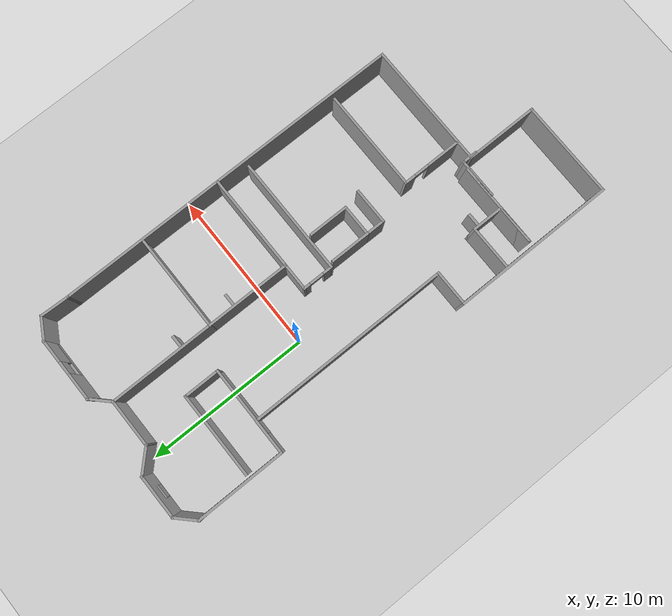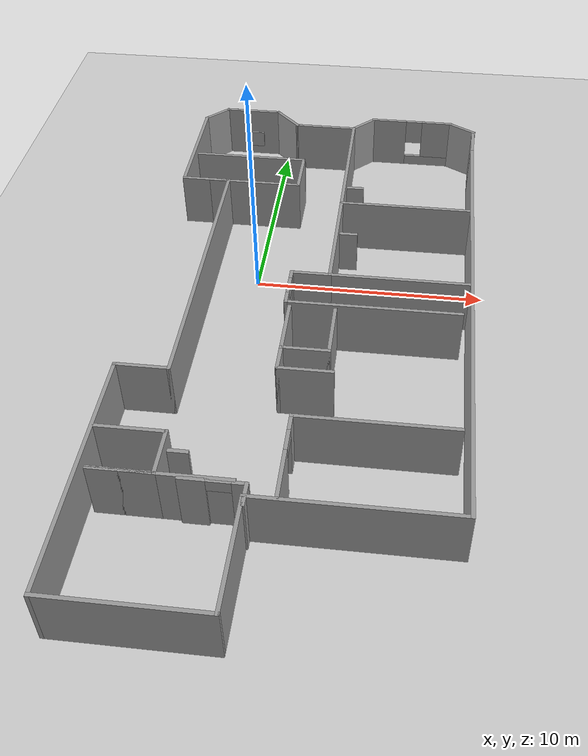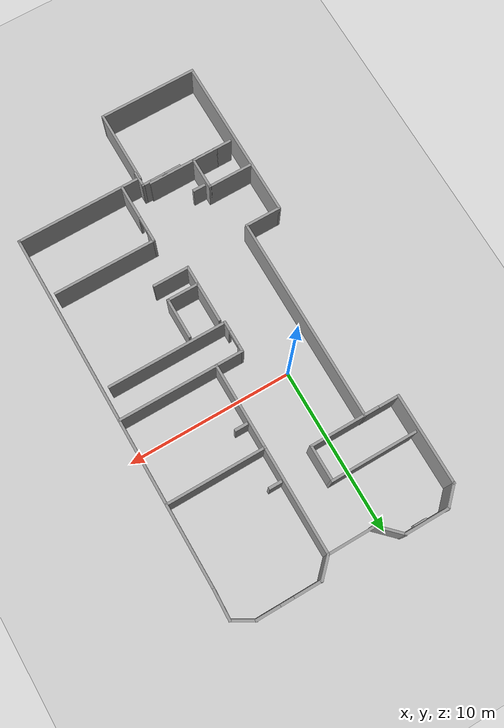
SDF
<sdf version="1.6">
 <world name="default">
  <model name="ground_plane">
   <static>1</static>
   <link name="link">
    <collision name="collision">
     <geometry><plane><normal>0 0 1</normal><size>100 100</size></plane></geometry>
     <surface><friction><ode><mu>100</mu><mu2>50</mu2></ode></friction></surface>
    </collision>
    <visual name="visual">
     <cast_shadows>0</cast_shadows>
     <geometry><plane><normal>0 0 1</normal><size>100 100</size></plane></geometry>
     <material>
      <script><uri>file://media/materials/scripts/gazebo.material</uri><name>Gazebo/Grey</name></script>
     </material>
    </visual>
   </link>
  </model>
  <model name="Building">
   <pose>2.66116 -3.56001 0 0 -0 0</pose>
   <link name="Door_0">
    <collision name="Door_0_Collision">
     <geometry><box><size>0.9 0.17 2</size></box></geometry>
     <pose>0 0 1 0 -0 0</pose>
    </collision>
    <visual name="Door_0_Visual">
     <pose>0 0 1 0 -0 0</pose>
     <geometry><box><size>0.9 0.17 2</size></box></geometry>
     <material>
      <script><uri>file://media/materials/scripts/gazebo.material</uri><name>Gazebo/Grey</name></script>
     </material>
    </visual>
    <pose>1.20871 8.66902 0 0 -0 0</pose>
   </link>
   <link name="Door_1">
    <collision name="Door_1_Collision">
     <geometry><box><size>0.9 0.17 2</size></box></geometry>
     <pose>0 0 1 0 -0 0</pose>
    </collision>
    <visual name="Door_1_Visual">
     <pose>0 0 1 0 -0 0</pose>
     <geometry><box><size>0.9 0.17 2</size></box></geometry>
     <material>
      <script><uri>file://media/materials/scripts/gazebo.material</uri><name>Gazebo/Grey</name></script>
     </material>
    </visual>
    <pose>1.20871 5.1178 0 0 -0 0</pose>
   </link>
   <link name="Door_3">
    <collision name="Door_3_Collision">
     <geometry><box><size>0.9 0.17 2</size></box></geometry>
     <pose>0 0 1 0 -0 0</pose>
    </collision>
    <visual name="Door_3_Visual">
     <pose>0 0 1 0 -0 0</pose>
     <geometry><box><size>0.9 0.17 2</size></box></geometry>
     <material>
      <script><uri>file://media/materials/scripts/gazebo.material</uri><name>Gazebo/Grey</name></script>
     </material>
    </visual>
    <pose>-3.63385 -7.90333 0 0 -0 0</pose>
   </link>
   <link name="Wall_10">
    <collision name="Wall_10_Collision">
     <geometry><box><size>5.5 0.15 2.5</size></box></geometry>
     <pose>0 0 1.25 0 -0 0</pose>
    </collision>
    <visual name="Wall_10_Visual">
     <pose>0 0 1.25 0 -0 0</pose>
     <geometry><box><size>5.5 0.15 2.5</size></box></geometry>
     <material>
      <script><uri>file://media/materials/scripts/gazebo.material</uri><name>Gazebo/Grey</name></script>
      <ambient>1 1 1 1</ambient>
     </material>
     <meta><layer>0</layer></meta>
    </visual>
    <pose>-6.75304 10.6072 0 0 -0 1.5708</pose>
   </link>
   <link name="Wall_11">
    <collision name="Wall_11_Collision">
     <geometry><box><size>1.5 0.15 2.5</size></box></geometry>
     <pose>0 0 1.25 0 -0 0</pose>
    </collision>
    <visual name="Wall_11_Visual">
     <pose>0 0 1.25 0 -0 0</pose>
     <geometry><box><size>1.5 0.15 2.5</size></box></geometry>
     <material>
      <script><uri>file://media/materials/scripts/gazebo.material</uri><name>Gazebo/Grey</name></script>
      <ambient>1 1 1 1</ambient>
     </material>
     <meta><layer>0</layer></meta>
    </visual>
    <pose>-6.27574 13.7595 0 0 -0 0.785398</pose>
   </link>
   <link name="Wall_12">
    <collision name="Wall_12_Collision">
     <geometry><box><size>2.75 0.15 2.5</size></box></geometry>
     <pose>0 0 1.25 0 -0 0</pose>
    </collision>
    <visual name="Wall_12_Visual">
     <pose>0 0 1.25 0 -0 0</pose>
     <geometry><box><size>2.75 0.15 2.5</size></box></geometry>
     <material>
      <script><uri>file://media/materials/scripts/gazebo.material</uri><name>Gazebo/Grey</name></script>
      <ambient>1 1 1 1</ambient>
     </material>
     <meta><layer>0</layer></meta>
    </visual>
    <pose>-4.49845 14.2368 0 0 -0 0</pose>
   </link>
   <link name="Wall_13">
    <collision name="Wall_13_Collision">
     <geometry><box><size>1.75 0.15 2.5</size></box></geometry>
     <pose>0 0 1.25 0 -0 0</pose>
    </collision>
    <visual name="Wall_13_Visual">
     <pose>0 0 1.25 0 -0 0</pose>
     <geometry><box><size>1.75 0.15 2.5</size></box></geometry>
     <material>
      <script><uri>file://media/materials/scripts/gazebo.material</uri><name>Gazebo/Grey</name></script>
      <ambient>1 1 1 1</ambient>
     </material>
     <meta><layer>0</layer></meta>
    </visual>
    <pose>-2.63276 13.6711 0 0 0 -0.785398</pose>
   </link>
   <link name="Wall_14">
    <collision name="Wall_14_Collision">
     <geometry><box><size>3 0.15 2.5</size></box></geometry>
     <pose>0 0 1.25 0 -0 0</pose>
    </collision>
    <visual name="Wall_14_Visual">
     <pose>0 0 1.25 0 -0 0</pose>
     <geometry><box><size>3 0.15 2.5</size></box></geometry>
     <material>
      <script><uri>file://media/materials/scripts/gazebo.material</uri><name>Gazebo/Grey</name></script>
      <ambient>1 1 1 1</ambient>
     </material>
     <meta><layer>0</layer></meta>
    </visual>
    <pose>-0.642075 13.1054 0 0 -0 0</pose>
   </link>
   <link name="Wall_15">
    <collision name="Wall_15_Collision">
     <geometry><box><size>1.5 0.15 2.5</size></box></geometry>
     <pose>0 0 1.25 0 -0 0</pose>
    </collision>
    <visual name="Wall_15_Visual">
     <pose>0 0 1.25 0 -0 0</pose>
     <geometry><box><size>1.5 0.15 2.5</size></box></geometry>
     <material>
      <script><uri>file://media/materials/scripts/gazebo.material</uri><name>Gazebo/Grey</name></script>
      <ambient>1 1 1 1</ambient>
     </material>
     <meta><layer>0</layer></meta>
    </visual>
    <pose>1.26022 13.5827 0 0 -0 0.785398</pose>
   </link>
   <link name="Wall_16">
    <pose>3.66252 14.06 0 0 -0 0</pose>
    <visual name="Wall_16_Visual_0">
     <pose>-1.13555 0 1.25 0 -0 0</pose>
     <geometry><box><size>1.7289 0.15 2.5</size></box></geometry>
     <material>
      <script><uri>file://media/materials/scripts/gazebo.material</uri><name>Gazebo/Grey</name></script>
      <ambient>1 1 1 1</ambient>
     </material>
     <meta><layer>0</layer></meta>
    </visual>
    <collision name="Wall_16_Collision_0">
     <geometry><box><size>1.7289 0.15 2.5</size></box></geometry>
     <pose>-1.13555 0 1.25 0 -0 0</pose>
    </collision>
    <visual name="Wall_16_Visual_1">
     <pose>0.86445 0 0.25 0 -0 0</pose>
     <geometry><box><size>2.2711 0.15 0.5</size></box></geometry>
     <material>
      <script><uri>file://media/materials/scripts/gazebo.material</uri><name>Gazebo/Grey</name></script>
      <ambient>1 1 1 1</ambient>
     </material>
     <meta><layer>0</layer></meta>
    </visual>
    <collision name="Wall_16_Collision_1">
     <geometry><box><size>2.2711 0.15 0.5</size></box></geometry>
     <pose>0.86445 0 0.25 0 -0 0</pose>
    </collision>
    <visual name="Wall_16_Visual_2">
     <pose>1.26445 0 1.5 0 -0 0</pose>
     <geometry><box><size>1.4711 0.15 2</size></box></geometry>
     <material>
      <script><uri>file://media/materials/scripts/gazebo.material</uri><name>Gazebo/Grey</name></script>
      <ambient>1 1 1 1</ambient>
     </material>
     <meta><layer>0</layer></meta>
    </visual>
    <collision name="Wall_16_Collision_2">
     <geometry><box><size>1.4711 0.15 2</size></box></geometry>
     <pose>1.26445 0 1.5 0 -0 0</pose>
    </collision>
    <visual name="Wall_16_Visual_3">
     <pose>0.1289 0 1.9 0 -0 0</pose>
     <geometry><box><size>0.8 0.15 1.2</size></box></geometry>
     <material>
      <script><uri>file://media/materials/scripts/gazebo.material</uri><name>Gazebo/Grey</name></script>
      <ambient>1 1 1 1</ambient>
     </material>
     <meta><layer>0</layer></meta>
    </visual>
    <collision name="Wall_16_Collision_3">
     <geometry><box><size>0.8 0.15 1.2</size></box></geometry>
     <pose>0.1289 0 1.9 0 -0 0</pose>
    </collision>
   </link>
   <link name="Wall_17">
    <collision name="Wall_17_Collision">
     <geometry><box><size>1.5 0.15 2.5</size></box></geometry>
     <pose>0 0 1.25 0 -0 0</pose>
    </collision>
    <visual name="Wall_17_Visual">
     <pose>0 0 1.25 0 -0 0</pose>
     <geometry><box><size>1.5 0.15 2.5</size></box></geometry>
     <material>
      <script><uri>file://media/materials/scripts/gazebo.material</uri><name>Gazebo/Grey</name></script>
      <ambient>1 1 1 1</ambient>
     </material>
     <meta><layer>0</layer></meta>
    </visual>
    <pose>6.17209 13.7225 0 0 0 -0.523599</pose>
   </link>
   <link name="Wall_18">
    <collision name="Wall_18_Collision">
     <geometry><box><size>1.85386 0.15 2.5</size></box></geometry>
     <pose>0 0 1.25 0 -0 0</pose>
    </collision>
    <visual name="Wall_18_Visual">
     <pose>0 0 1.25 0 -0 0</pose>
     <geometry><box><size>1.85386 0.15 2.5</size></box></geometry>
     <material>
      <script><uri>file://media/materials/scripts/gazebo.material</uri><name>Gazebo/Grey</name></script>
      <ambient>1 1 1 1</ambient>
     </material>
     <meta><layer>0</layer></meta>
    </visual>
    <pose>6.72681 12.5336 0 0 0 -1.60584</pose>
   </link>
   <link name="Wall_2">
    <collision name="Wall_2_Collision">
     <geometry><box><size>21.75 0.15 2.5</size></box></geometry>
     <pose>0 0 1.25 0 -0 0</pose>
    </collision>
    <visual name="Wall_2_Visual">
     <pose>0 0 1.25 0 -0 0</pose>
     <geometry><box><size>21.75 0.15 2.5</size></box></geometry>
     <material>
      <script><uri>file://media/materials/scripts/gazebo.material</uri><name>Gazebo/Grey</name></script>
      <ambient>1 1 1 1</ambient>
     </material>
     <meta><layer>0</layer></meta>
    </visual>
    <pose>6.69696 0.88217 0 0 0 -1.5708</pose>
   </link>
   <link name="Wall_20">
    <collision name="Wall_20_Collision">
     <geometry><box><size>4.25 0.15 2.5</size></box></geometry>
     <pose>0 0 1.25 0 -0 0</pose>
    </collision>
    <visual name="Wall_20_Visual">
     <pose>0 0 1.25 0 -0 0</pose>
     <geometry><box><size>4.25 0.15 2.5</size></box></geometry>
     <material>
      <script><uri>file://media/materials/scripts/gazebo.material</uri><name>Gazebo/Grey</name></script>
      <ambient>1 1 1 1</ambient>
     </material>
     <meta><layer>0</layer></meta>
    </visual>
    <pose>-3.41327 7.91573 0 0 -0 0</pose>
   </link>
   <link name="Wall_21">
    <collision name="Wall_21_Collision">
     <geometry><box><size>2.25 0.15 2.5</size></box></geometry>
     <pose>0 0 1.25 0 -0 0</pose>
    </collision>
    <visual name="Wall_21_Visual">
     <pose>0 0 1.25 0 -0 0</pose>
     <geometry><box><size>2.25 0.15 2.5</size></box></geometry>
     <material>
      <script><uri>file://media/materials/scripts/gazebo.material</uri><name>Gazebo/Grey</name></script>
      <ambient>1 1 1 1</ambient>
     </material>
     <meta><layer>0</layer></meta>
    </visual>
    <pose>-1.36327 8.96573 0 0 -0 1.5708</pose>
   </link>
   <link name="Wall_22">
    <collision name="Wall_22_Collision">
     <geometry><box><size>5.25 0.15 2.5</size></box></geometry>
     <pose>0 0 1.25 0 -0 0</pose>
    </collision>
    <visual name="Wall_22_Visual">
     <pose>0 0 1.25 0 -0 0</pose>
     <geometry><box><size>5.25 0.15 2.5</size></box></geometry>
     <material>
      <script><uri>file://media/materials/scripts/gazebo.material</uri><name>Gazebo/Grey</name></script>
      <ambient>1 1 1 1</ambient>
     </material>
     <meta><layer>0</layer></meta>
    </visual>
    <pose>-3.91327 10.0157 0 0 -0 3.14159</pose>
   </link>
   <link name="Wall_24">
    <collision name="Wall_24_Collision">
     <geometry><box><size>6.5 0.15 2.5</size></box></geometry>
     <pose>0 0 1.25 0 -0 0</pose>
    </collision>
    <visual name="Wall_24_Visual">
     <pose>0 0 1.25 0 -0 0</pose>
     <geometry><box><size>6.5 0.15 2.5</size></box></geometry>
     <material>
      <script><uri>file://media/materials/scripts/gazebo.material</uri><name>Gazebo/Grey</name></script>
      <ambient>1 1 1 1</ambient>
     </material>
     <meta><layer>0</layer></meta>
    </visual>
    <pose>0.782925 9.93039 0 0 0 -1.5708</pose>
   </link>
   <link name="Wall_25">
    <collision name="Wall_25_Collision">
     <geometry><box><size>6 0.15 2.5</size></box></geometry>
     <pose>0 0 1.25 0 -0 0</pose>
    </collision>
    <visual name="Wall_25_Visual">
     <pose>0 0 1.25 0 -0 0</pose>
     <geometry><box><size>6 0.15 2.5</size></box></geometry>
     <material>
      <script><uri>file://media/materials/scripts/gazebo.material</uri><name>Gazebo/Grey</name></script>
      <ambient>1 1 1 1</ambient>
     </material>
     <meta><layer>0</layer></meta>
    </visual>
    <pose>3.70792 6.75539 0 0 -0 0</pose>
   </link>
   <link name="Wall_27">
    <collision name="Wall_27_Collision">
     <geometry><box><size>5.25 0.15 2.5</size></box></geometry>
     <pose>0 0 1.25 0 -0 0</pose>
    </collision>
    <visual name="Wall_27_Visual">
     <pose>0 0 1.25 0 -0 0</pose>
     <geometry><box><size>5.25 0.15 2.5</size></box></geometry>
     <material>
      <script><uri>file://media/materials/scripts/gazebo.material</uri><name>Gazebo/Grey</name></script>
      <ambient>1 1 1 1</ambient>
     </material>
     <meta><layer>0</layer></meta>
    </visual>
    <pose>0.782925 4.20539 0 0 0 -1.5708</pose>
   </link>
   <link name="Wall_28">
    <collision name="Wall_28_Collision">
     <geometry><box><size>6 0.15 2.5</size></box></geometry>
     <pose>0 0 1.25 0 -0 0</pose>
    </collision>
    <visual name="Wall_28_Visual">
     <pose>0 0 1.25 0 -0 0</pose>
     <geometry><box><size>6 0.15 2.5</size></box></geometry>
     <material>
      <script><uri>file://media/materials/scripts/gazebo.material</uri><name>Gazebo/Grey</name></script>
      <ambient>1 1 1 1</ambient>
     </material>
     <meta><layer>0</layer></meta>
    </visual>
    <pose>3.70792 1.65539 0 0 -0 0</pose>
   </link>
   <link name="Wall_3">
    <collision name="Wall_3_Collision">
     <geometry><box><size>7.75 0.15 2.5</size></box></geometry>
     <pose>0 0 1.25 0 -0 0</pose>
    </collision>
    <visual name="Wall_3_Visual">
     <pose>0 0 1.25 0 -0 0</pose>
     <geometry><box><size>7.75 0.15 2.5</size></box></geometry>
     <material>
      <script><uri>file://media/materials/scripts/gazebo.material</uri><name>Gazebo/Grey</name></script>
      <ambient>1 1 1 1</ambient>
     </material>
     <meta><layer>0</layer></meta>
    </visual>
    <pose>2.89696 -9.91783 0 0 -0 3.14159</pose>
   </link>
   <link name="Wall_30">
    <collision name="Wall_30_Collision">
     <geometry><box><size>1.75 0.15 2.5</size></box></geometry>
     <pose>0 0 1.25 0 -0 0</pose>
    </collision>
    <visual name="Wall_30_Visual">
     <pose>0 0 1.25 0 -0 0</pose>
     <geometry><box><size>1.75 0.15 2.5</size></box></geometry>
     <material>
      <script><uri>file://media/materials/scripts/gazebo.material</uri><name>Gazebo/Grey</name></script>
      <ambient>1 1 1 1</ambient>
     </material>
     <meta><layer>0</layer></meta>
    </visual>
    <pose>-0.017075 1.65539 0 0 -0 3.14159</pose>
   </link>
   <link name="Wall_31">
    <pose>-0.817075 0.730394 0 0 0 -1.5708</pose>
    <visual name="Wall_31_Visual_0">
     <pose>-0.76645 0 1.25 0 -0 0</pose>
     <geometry><box><size>0.4671 0.15 2.5</size></box></geometry>
     <material>
      <script><uri>file://media/materials/scripts/gazebo.material</uri><name>Gazebo/Grey</name></script>
      <ambient>1 1 1 1</ambient>
     </material>
     <meta><layer>0</layer></meta>
    </visual>
    <collision name="Wall_31_Collision_0">
     <geometry><box><size>0.4671 0.15 2.5</size></box></geometry>
     <pose>-0.76645 0 1.25 0 -0 0</pose>
    </collision>
    <visual name="Wall_31_Visual_1">
     <pose>0.68355 0 1.25 0 -0 0</pose>
     <geometry><box><size>0.6329 0.15 2.5</size></box></geometry>
     <material>
      <script><uri>file://media/materials/scripts/gazebo.material</uri><name>Gazebo/Grey</name></script>
      <ambient>1 1 1 1</ambient>
     </material>
     <meta><layer>0</layer></meta>
    </visual>
    <collision name="Wall_31_Collision_1">
     <geometry><box><size>0.6329 0.15 2.5</size></box></geometry>
     <pose>0.68355 0 1.25 0 -0 0</pose>
    </collision>
    <visual name="Wall_31_Visual_2">
     <pose>-0.0829 0 2.25 0 -0 0</pose>
     <geometry><box><size>0.9 0.15 0.5</size></box></geometry>
     <material>
      <script><uri>file://media/materials/scripts/gazebo.material</uri><name>Gazebo/Grey</name></script>
      <ambient>1 1 1 1</ambient>
     </material>
     <meta><layer>0</layer></meta>
    </visual>
    <collision name="Wall_31_Collision_2">
     <geometry><box><size>0.9 0.15 0.5</size></box></geometry>
     <pose>-0.0829 0 2.25 0 -0 0</pose>
    </collision>
   </link>
   <link name="Wall_32">
    <collision name="Wall_32_Collision">
     <geometry><box><size>7.25 0.15 2.5</size></box></geometry>
     <pose>0 0 1.25 0 -0 0</pose>
    </collision>
    <visual name="Wall_32_Visual">
     <pose>0 0 1.25 0 -0 0</pose>
     <geometry><box><size>7.25 0.15 2.5</size></box></geometry>
     <material>
      <script><uri>file://media/materials/scripts/gazebo.material</uri><name>Gazebo/Grey</name></script>
      <ambient>1 1 1 1</ambient>
     </material>
     <meta><layer>0</layer></meta>
    </visual>
    <pose>2.73292 -0.194606 0 0 -0 0</pose>
   </link>
   <link name="Wall_34">
    <collision name="Wall_34_Collision">
     <geometry><box><size>2.5 0.15 2.5</size></box></geometry>
     <pose>0 0 1.25 0 -0 0</pose>
    </collision>
    <visual name="Wall_34_Visual">
     <pose>0 0 1.25 0 -0 0</pose>
     <geometry><box><size>2.5 0.15 2.5</size></box></geometry>
     <material>
      <script><uri>file://media/materials/scripts/gazebo.material</uri><name>Gazebo/Grey</name></script>
      <ambient>1 1 1 1</ambient>
     </material>
     <meta><layer>0</layer></meta>
    </visual>
    <pose>-0.620699 -1.65306 0 0 0 -1.5708</pose>
   </link>
   <link name="Wall_35">
    <collision name="Wall_35_Collision">
     <geometry><box><size>2 0.15 2.5</size></box></geometry>
     <pose>0 0 1.25 0 -0 0</pose>
    </collision>
    <visual name="Wall_35_Visual">
     <pose>0 0 1.25 0 -0 0</pose>
     <geometry><box><size>2 0.15 2.5</size></box></geometry>
     <material>
      <script><uri>file://media/materials/scripts/gazebo.material</uri><name>Gazebo/Grey</name></script>
      <ambient>1 1 1 1</ambient>
     </material>
     <meta><layer>0</layer></meta>
    </visual>
    <pose>0.304301 -2.82806 0 0 -0 0</pose>
   </link>
   <link name="Wall_36">
    <collision name="Wall_36_Collision">
     <geometry><box><size>2.5 0.15 2.5</size></box></geometry>
     <pose>0 0 1.25 0 -0 0</pose>
    </collision>
    <visual name="Wall_36_Visual">
     <pose>0 0 1.25 0 -0 0</pose>
     <geometry><box><size>2.5 0.15 2.5</size></box></geometry>
     <material>
      <script><uri>file://media/materials/scripts/gazebo.material</uri><name>Gazebo/Grey</name></script>
      <ambient>1 1 1 1</ambient>
     </material>
     <meta><layer>0</layer></meta>
    </visual>
    <pose>1.2293 -1.65306 0 0 -0 1.5708</pose>
   </link>
   <link name="Wall_38">
    <collision name="Wall_38_Collision">
     <geometry><box><size>1.25 0.15 2.5</size></box></geometry>
     <pose>0 0 1.25 0 -0 0</pose>
    </collision>
    <visual name="Wall_38_Visual">
     <pose>0 0 1.25 0 -0 0</pose>
     <geometry><box><size>1.25 0.15 2.5</size></box></geometry>
     <material>
      <script><uri>file://media/materials/scripts/gazebo.material</uri><name>Gazebo/Grey</name></script>
      <ambient>1 1 1 1</ambient>
     </material>
     <meta><layer>0</layer></meta>
    </visual>
    <pose>-0.620699 -3.37806 0 0 0 -1.5708</pose>
   </link>
   <link name="Wall_39">
    <collision name="Wall_39_Collision">
     <geometry><box><size>2.25 0.15 2.5</size></box></geometry>
     <pose>0 0 1.25 0 -0 0</pose>
    </collision>
    <visual name="Wall_39_Visual">
     <pose>0 0 1.25 0 -0 0</pose>
     <geometry><box><size>2.25 0.15 2.5</size></box></geometry>
     <material>
      <script><uri>file://media/materials/scripts/gazebo.material</uri><name>Gazebo/Grey</name></script>
      <ambient>1 1 1 1</ambient>
     </material>
     <meta><layer>0</layer></meta>
    </visual>
    <pose>0.429301 -3.92806 0 0 -0 0</pose>
   </link>
   <link name="Wall_4">
    <collision name="Wall_4_Collision">
     <geometry><box><size>4.5 0.15 2.5</size></box></geometry>
     <pose>0 0 1.25 0 -0 0</pose>
    </collision>
    <visual name="Wall_4_Visual">
     <pose>0 0 1.25 0 -0 0</pose>
     <geometry><box><size>4.5 0.15 2.5</size></box></geometry>
     <material>
      <script><uri>file://media/materials/scripts/gazebo.material</uri><name>Gazebo/Grey</name></script>
      <ambient>1 1 1 1</ambient>
     </material>
     <meta><layer>0</layer></meta>
    </visual>
    <pose>-0.90304 -12.0928 0 0 0 -1.5708</pose>
   </link>
   <link name="Wall_42">
    <pose>0.240202 -8.04036 0 0 -0 1.5708</pose>
    <visual name="Wall_42_Visual_0">
     <pose>-0.824955 0 1.25 0 -0 0</pose>
     <geometry><box><size>2.10009 0.15 2.5</size></box></geometry>
     <material>
      <script><uri>file://media/materials/scripts/gazebo.material</uri><name>Gazebo/Grey</name></script>
      <ambient>1 1 1 1</ambient>
     </material>
     <meta><layer>0</layer></meta>
    </visual>
    <collision name="Wall_42_Collision_0">
     <geometry><box><size>2.10009 0.15 2.5</size></box></geometry>
     <pose>-0.824955 0 1.25 0 -0 0</pose>
    </collision>
    <visual name="Wall_42_Visual_1">
     <pose>1.50005 0 1.25 0 -0 0</pose>
     <geometry><box><size>0.749909 0.15 2.5</size></box></geometry>
     <material>
      <script><uri>file://media/materials/scripts/gazebo.material</uri><name>Gazebo/Grey</name></script>
      <ambient>1 1 1 1</ambient>
     </material>
     <meta><layer>0</layer></meta>
    </visual>
    <collision name="Wall_42_Collision_1">
     <geometry><box><size>0.749909 0.15 2.5</size></box></geometry>
     <pose>1.50005 0 1.25 0 -0 0</pose>
    </collision>
    <visual name="Wall_42_Visual_2">
     <pose>0.675091 0 2.25 0 -0 0</pose>
     <geometry><box><size>0.9 0.15 0.5</size></box></geometry>
     <material>
      <script><uri>file://media/materials/scripts/gazebo.material</uri><name>Gazebo/Grey</name></script>
      <ambient>1 1 1 1</ambient>
     </material>
     <meta><layer>0</layer></meta>
    </visual>
    <collision name="Wall_42_Collision_2">
     <geometry><box><size>0.9 0.15 0.5</size></box></geometry>
     <pose>0.675091 0 2.25 0 -0 0</pose>
    </collision>
   </link>
   <link name="Wall_43">
    <collision name="Wall_43_Collision">
     <geometry><box><size>6.25 0.15 2.5</size></box></geometry>
     <pose>0 0 1.25 0 -0 0</pose>
    </collision>
    <visual name="Wall_43_Visual">
     <pose>0 0 1.25 0 -0 0</pose>
     <geometry><box><size>6.25 0.15 2.5</size></box></geometry>
     <material>
      <script><uri>file://media/materials/scripts/gazebo.material</uri><name>Gazebo/Grey</name></script>
      <ambient>1 1 1 1</ambient>
     </material>
     <meta><layer>0</layer></meta>
    </visual>
    <pose>3.2902 -6.24036 0 0 -0 0</pose>
   </link>
   <link name="Wall_45">
    <collision name="Wall_45_Collision">
     <geometry><box><size>2.75 0.15 2.5</size></box></geometry>
     <pose>0 0 1.25 0 -0 0</pose>
    </collision>
    <visual name="Wall_45_Visual">
     <pose>0 0 1.25 0 -0 0</pose>
     <geometry><box><size>2.75 0.15 2.5</size></box></geometry>
     <material>
      <script><uri>file://media/materials/scripts/gazebo.material</uri><name>Gazebo/Grey</name></script>
      <ambient>1 1 1 1</ambient>
     </material>
     <meta><layer>0</layer></meta>
    </visual>
    <pose>-5.34701 -7.47288 0 0 -0 0</pose>
   </link>
   <link name="Wall_46">
    <collision name="Wall_46_Collision">
     <geometry><box><size>2 0.15 2.5</size></box></geometry>
     <pose>0 0 1.25 0 -0 0</pose>
    </collision>
    <visual name="Wall_46_Visual">
     <pose>0 0 1.25 0 -0 0</pose>
     <geometry><box><size>2 0.15 2.5</size></box></geometry>
     <material>
      <script><uri>file://media/materials/scripts/gazebo.material</uri><name>Gazebo/Grey</name></script>
      <ambient>1 1 1 1</ambient>
     </material>
     <meta><layer>0</layer></meta>
    </visual>
    <pose>-4.04701 -8.39788 0 0 0 -1.5708</pose>
   </link>
   <link name="Wall_47">
    <collision name="Wall_47_Collision">
     <geometry><box><size>2.5 0.15 2.5</size></box></geometry>
     <pose>0 0 1.25 0 -0 0</pose>
    </collision>
    <visual name="Wall_47_Visual">
     <pose>0 0 1.25 0 -0 0</pose>
     <geometry><box><size>2.5 0.15 2.5</size></box></geometry>
     <material>
      <script><uri>file://media/materials/scripts/gazebo.material</uri><name>Gazebo/Grey</name></script>
      <ambient>1 1 1 1</ambient>
     </material>
     <meta><layer>0</layer></meta>
    </visual>
    <pose>-5.22201 -9.32288 0 0 -0 3.14159</pose>
   </link>
   <link name="Wall_48">
    <collision name="Wall_48_Collision">
     <geometry><box><size>5.25 0.15 2.5</size></box></geometry>
     <pose>0 0 1.25 0 -0 0</pose>
    </collision>
    <visual name="Wall_48_Visual">
     <pose>0 0 1.25 0 -0 0</pose>
     <geometry><box><size>5.25 0.15 2.5</size></box></geometry>
     <material>
      <script><uri>file://media/materials/scripts/gazebo.material</uri><name>Gazebo/Grey</name></script>
      <ambient>1 1 1 1</ambient>
     </material>
     <meta><layer>0</layer></meta>
    </visual>
    <pose>-3.84701 -9.32288 0 0 -0 0</pose>
   </link>
   <link name="Wall_5">
    <collision name="Wall_5_Collision">
     <geometry><box><size>6 0.15 2.5</size></box></geometry>
     <pose>0 0 1.25 0 -0 0</pose>
    </collision>
    <visual name="Wall_5_Visual">
     <pose>0 0 1.25 0 -0 0</pose>
     <geometry><box><size>6 0.15 2.5</size></box></geometry>
     <material>
      <script><uri>file://media/materials/scripts/gazebo.material</uri><name>Gazebo/Grey</name></script>
      <ambient>1 1 1 1</ambient>
     </material>
     <meta><layer>0</layer></meta>
    </visual>
    <pose>-3.82804 -14.2678 0 0 -0 3.14159</pose>
   </link>
   <link name="Wall_50">
    <collision name="Wall_50_Collision">
     <geometry><box><size>1 0.15 2.5</size></box></geometry>
     <pose>0 0 1.25 0 -0 0</pose>
    </collision>
    <visual name="Wall_50_Visual">
     <pose>0 0 1.25 0 -0 0</pose>
     <geometry><box><size>1 0.15 2.5</size></box></geometry>
     <material>
      <script><uri>file://media/materials/scripts/gazebo.material</uri><name>Gazebo/Grey</name></script>
      <ambient>1 1 1 1</ambient>
     </material>
     <meta><layer>0</layer></meta>
    </visual>
    <pose>-0.835925 -9.84581 0 0 -0 1.5708</pose>
   </link>
   <link name="Wall_51">
    <pose>-2.01092 -9.42081 0 0 -0 3.14159</pose>
    <visual name="Wall_51_Visual_0">
     <pose>-0.953243 0 1.25 0 -0 0</pose>
     <geometry><box><size>0.593514 0.15 2.5</size></box></geometry>
     <material>
      <script><uri>file://media/materials/scripts/gazebo.material</uri><name>Gazebo/Grey</name></script>
      <ambient>1 1 1 1</ambient>
     </material>
     <meta><layer>0</layer></meta>
    </visual>
    <collision name="Wall_51_Collision_0">
     <geometry><box><size>0.593514 0.15 2.5</size></box></geometry>
     <pose>-0.953243 0 1.25 0 -0 0</pose>
    </collision>
    <visual name="Wall_51_Visual_1">
     <pose>0.746757 0 1.25 0 -0 0</pose>
     <geometry><box><size>1.00649 0.15 2.5</size></box></geometry>
     <material>
      <script><uri>file://media/materials/scripts/gazebo.material</uri><name>Gazebo/Grey</name></script>
      <ambient>1 1 1 1</ambient>
     </material>
     <meta><layer>0</layer></meta>
    </visual>
    <collision name="Wall_51_Collision_1">
     <geometry><box><size>1.00649 0.15 2.5</size></box></geometry>
     <pose>0.746757 0 1.25 0 -0 0</pose>
    </collision>
    <visual name="Wall_51_Visual_2">
     <pose>-0.206486 0 2.25 0 -0 0</pose>
     <geometry><box><size>0.9 0.15 0.5</size></box></geometry>
     <material>
      <script><uri>file://media/materials/scripts/gazebo.material</uri><name>Gazebo/Grey</name></script>
      <ambient>1 1 1 1</ambient>
     </material>
     <meta><layer>0</layer></meta>
    </visual>
    <collision name="Wall_51_Collision_2">
     <geometry><box><size>0.9 0.15 0.5</size></box></geometry>
     <pose>-0.206486 0 2.25 0 -0 0</pose>
    </collision>
   </link>
   <link name="Wall_6">
    <collision name="Wall_6_Collision">
     <geometry><box><size>10 0.15 2.5</size></box></geometry>
     <pose>0 0 1.25 0 -0 0</pose>
    </collision>
    <visual name="Wall_6_Visual">
     <pose>0 0 1.25 0 -0 0</pose>
     <geometry><box><size>10 0.15 2.5</size></box></geometry>
     <material>
      <script><uri>file://media/materials/scripts/gazebo.material</uri><name>Gazebo/Grey</name></script>
      <ambient>1 1 1 1</ambient>
     </material>
     <meta><layer>0</layer></meta>
    </visual>
    <pose>-6.75304 -9.34283 0 0 -0 1.5708</pose>
   </link>
   <link name="Wall_7">
    <collision name="Wall_7_Collision">
     <geometry><box><size>2.25 0.15 2.5</size></box></geometry>
     <pose>0 0 1.25 0 -0 0</pose>
    </collision>
    <visual name="Wall_7_Visual">
     <pose>0 0 1.25 0 -0 0</pose>
     <geometry><box><size>2.25 0.15 2.5</size></box></geometry>
     <material>
      <script><uri>file://media/materials/scripts/gazebo.material</uri><name>Gazebo/Grey</name></script>
      <ambient>1 1 1 1</ambient>
     </material>
     <meta><layer>0</layer></meta>
    </visual>
    <pose>-5.70304 -4.41783 0 0 -0 0</pose>
   </link>
   <link name="Wall_8">
    <collision name="Wall_8_Collision">
     <geometry><box><size>12.5 0.15 2.5</size></box></geometry>
     <pose>0 0 1.25 0 -0 0</pose>
    </collision>
    <visual name="Wall_8_Visual">
     <pose>0 0 1.25 0 -0 0</pose>
     <geometry><box><size>12.5 0.15 2.5</size></box></geometry>
     <material>
      <script><uri>file://media/materials/scripts/gazebo.material</uri><name>Gazebo/Grey</name></script>
      <ambient>1 1 1 1</ambient>
     </material>
     <meta><layer>0</layer></meta>
    </visual>
    <pose>-4.65304 1.75717 0 0 -0 1.5708</pose>
   </link>
   <link name="Wall_9">
    <collision name="Wall_9_Collision">
     <geometry><box><size>2.25 0.15 2.5</size></box></geometry>
     <pose>0 0 1.25 0 -0 0</pose>
    </collision>
    <visual name="Wall_9_Visual">
     <pose>0 0 1.25 0 -0 0</pose>
     <geometry><box><size>2.25 0.15 2.5</size></box></geometry>
     <material>
      <script><uri>file://media/materials/scripts/gazebo.material</uri><name>Gazebo/Grey</name></script>
      <ambient>1 1 1 1</ambient>
     </material>
     <meta><layer>0</layer></meta>
    </visual>
    <pose>-5.70304 7.93217 0 0 -0 3.14159</pose>
   </link>
   <link name="Window_0">
    <collision name="Window_0_Collision">
     <geometry><box><size>0.8 0.17 0.8</size></box></geometry>
     <pose>0 0 0.4 0 -0 0</pose>
    </collision>
    <visual name="Window_0_Visual">
     <pose>0 0 0.4 0 -0 0</pose>
     <geometry><box><size>0.8 0.17 0.8</size></box></geometry>
     <material>
      <script><uri>file://media/materials/scripts/gazebo.material</uri><name>Gazebo/Grey</name></script>
     </material>
    </visual>
    <pose>-4.38714 14.1573 0.5 0 -0 0</pose>
   </link>
   <static>1</static>
  </model>
 </world>
</sdf>
